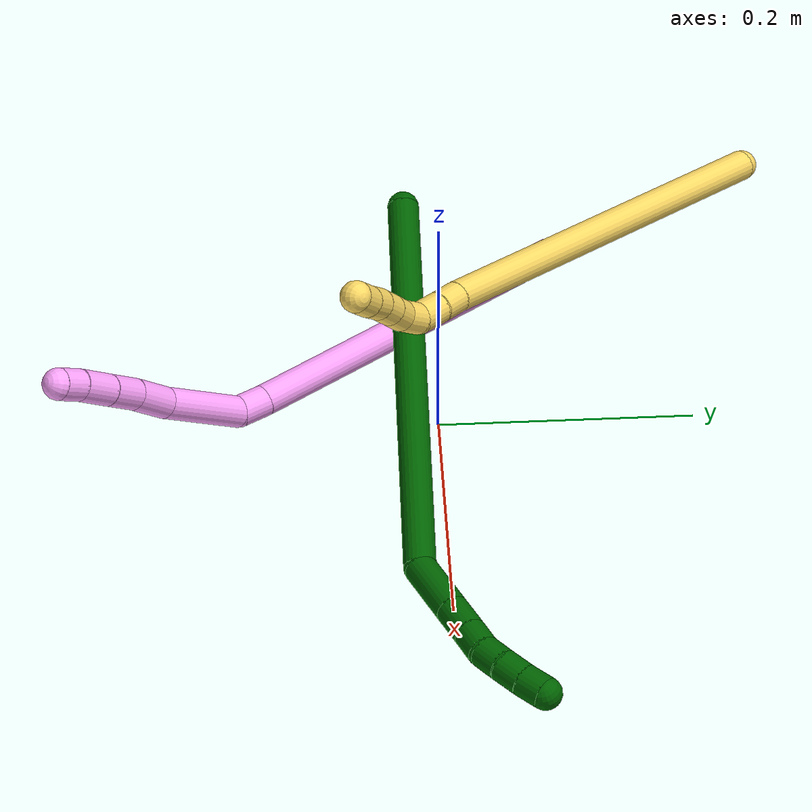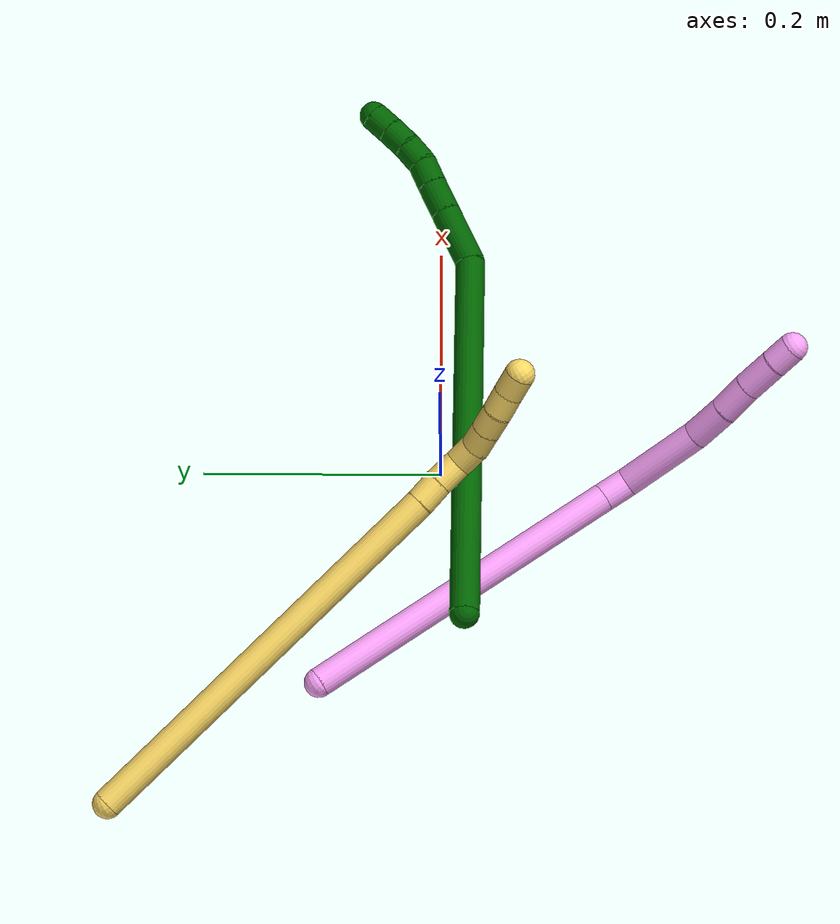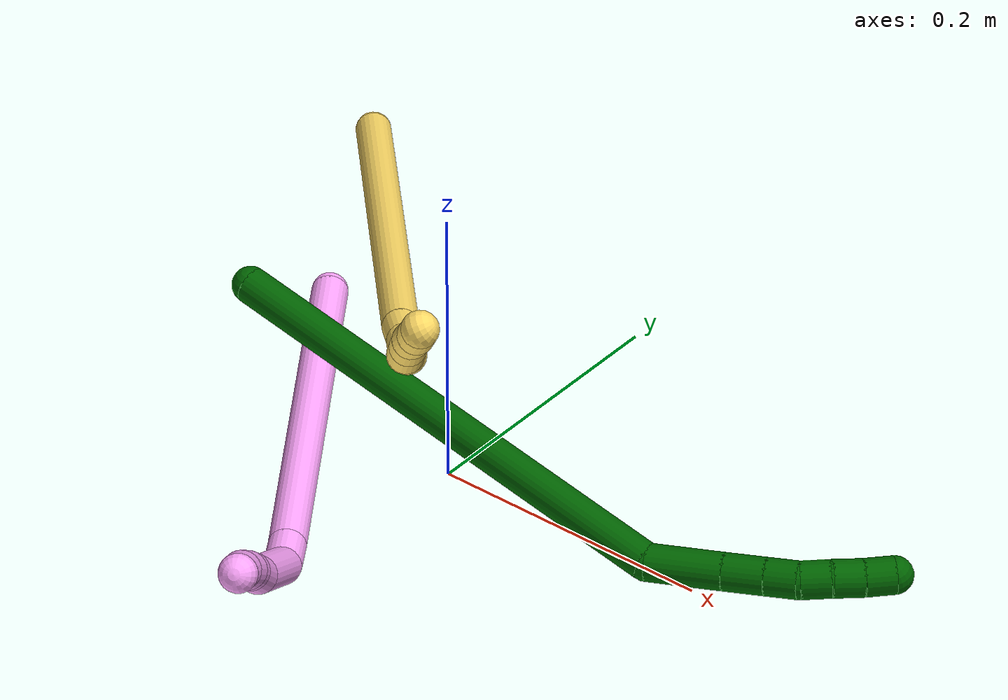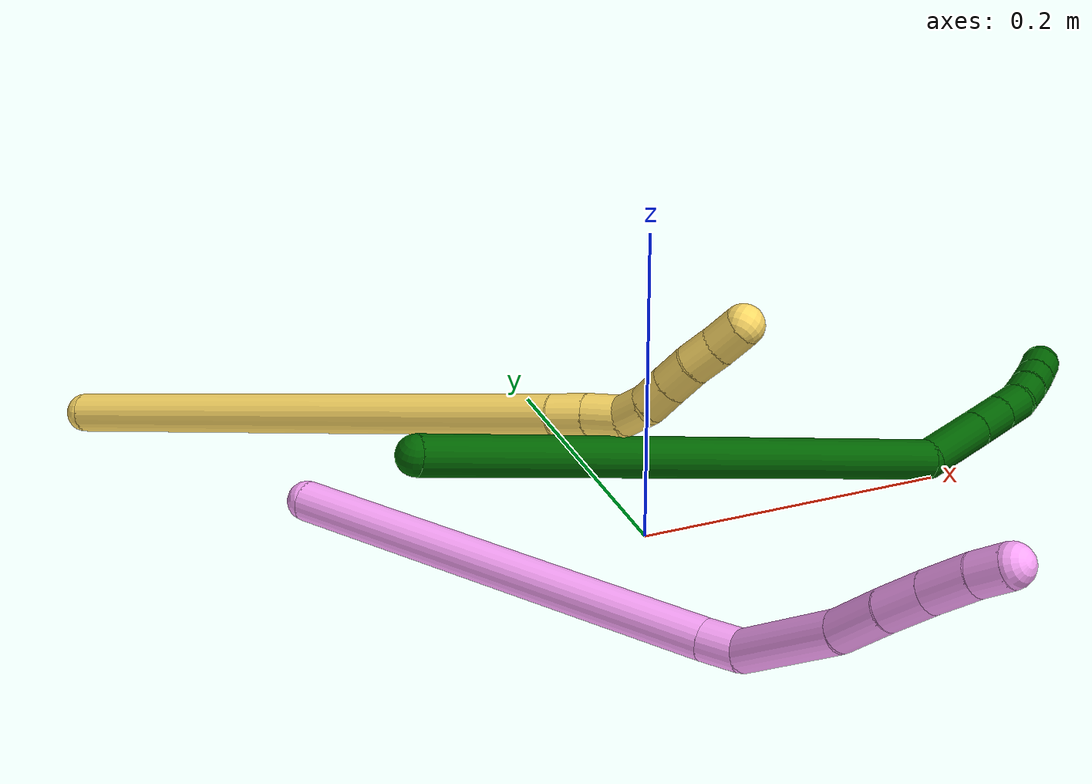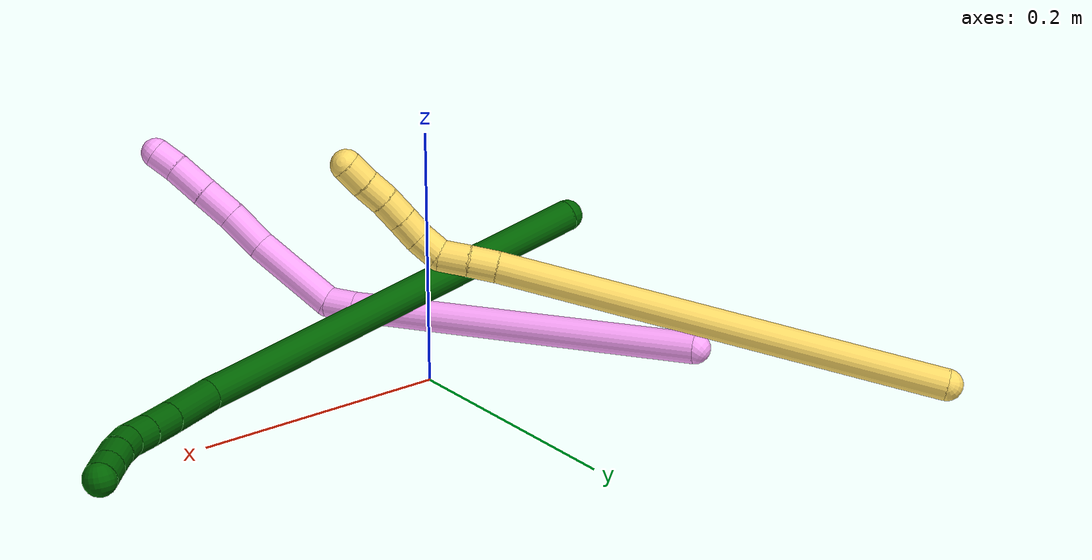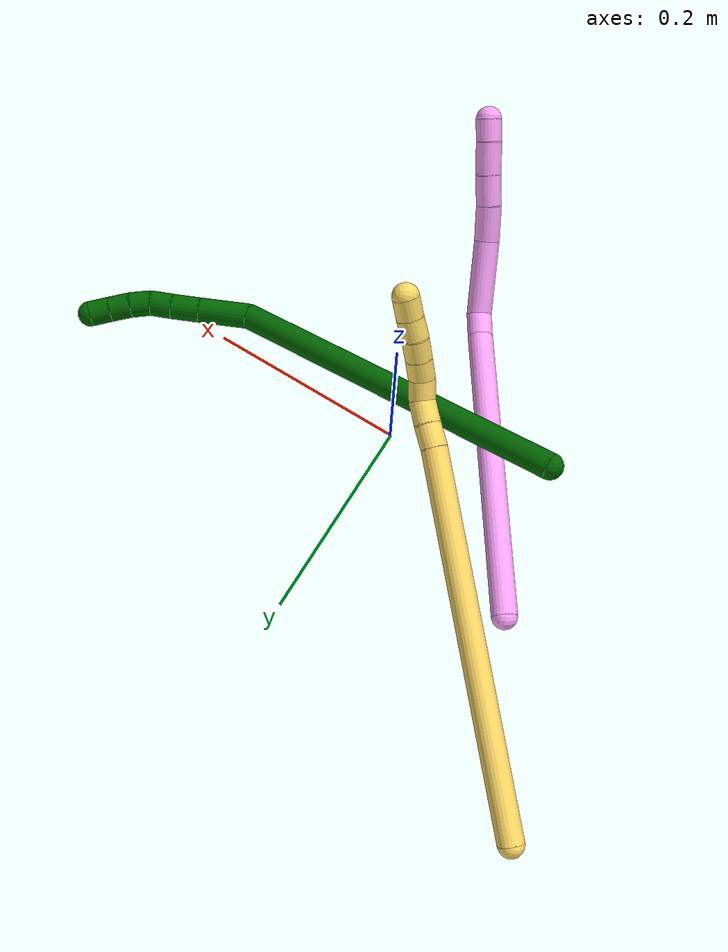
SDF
<sdf version="1.7">
 <world name="default">
  <model name="photoneo_s_sensor">
   <static>1</static>
   <pose>0 0 2 1.57079 1.57079 3.14159</pose>
   <link name="link">
    <inertial><mass>0.1</mass></inertial>
    <sensor name="sensor" type="depth">
     <update_rate>30</update_rate>
     <camera>
      <horizontal_fov>1.22</horizontal_fov>
      <image><width>1920</width><height>1200</height><format>B8G8R8</format></image>
      <clip><near>0.1</near><far>2</far></clip>
      <depth_camera><output>points</output></depth_camera>
     </camera>
     <plugin name="camera_plugin" filename="libgazebo_ros_depth_camera.so">
      <baseline>0.2</baseline>
      <alwaysOn>1</alwaysOn>
      <updateRate>0.0</updateRate>
      <cameraName>camera_ir</cameraName>
      <imageTopicName>/camera/color/image_raw</imageTopicName>
      <cameraInfoTopicName>/camera/color/camera_info</cameraInfoTopicName>
      <depthImageTopicName>/camera/depth/image_raw</depthImageTopicName>
      <depthImageCameraInfoTopicName>/camera/depth/camera_info</depthImageCameraInfoTopicName>
      <pointCloudTopicName>/camera/depth/points</pointCloudTopicName>
      <frameName>fr_optical</frameName>
      <pointCloudCutoff>0.1</pointCloudCutoff>
      <pointCloudCutoffMax>2.0</pointCloudCutoffMax>
      <distortionK1>0</distortionK1>
      <distortionK2>0</distortionK2>
      <distortionK3>0</distortionK3>
      <distortionT1>0</distortionT1>
      <distortionT2>0</distortionT2>
      <CxPrime>0</CxPrime>
      <Cx>0</Cx>
      <Cy>0</Cy>
      <focalLength>0</focalLength>
      <hackBaseline>0</hackBaseline>
     </plugin>
    </sensor>
   </link>
  </model>
  <model name="bin">
   <static>1</static>
   <link name="bottom">
    <collision name="collision-bottom">
     <pose>0 0 -0.01 0 -0 0</pose>
     <geometry><box><size>0.8 0.6 0.02</size></box></geometry>
     <surface>
      <friction><ode><mu>100</mu><mu2>100</mu2></ode></friction>
      <contact><collide_bitmask>65535</collide_bitmask></contact>
     </surface>
    </collision>
   </link>
   <link name="west_wall">
    <collision name="collision-west_wall">
     <pose>-0.41 0 0.1 0 -0 0</pose>
     <geometry><box><size>0.02 0.6 0.2</size></box></geometry>
     <surface>
      <friction><ode><mu>100</mu><mu2>100</mu2></ode></friction>
      <contact><collide_bitmask>65535</collide_bitmask></contact>
     </surface>
    </collision>
   </link>
   <link name="east_wall">
    <collision name="collision-east_wall">
     <pose>0.41 0 0.1 0 -0 0</pose>
     <geometry><box><size>0.02 0.6 0.2</size></box></geometry>
     <surface>
      <friction><ode><mu>100</mu><mu2>100</mu2></ode></friction>
      <contact><collide_bitmask>65535</collide_bitmask></contact>
     </surface>
    </collision>
   </link>
   <link name="south_wall">
    <collision name="collision-south_wall">
     <pose>0 -0.31 0.1 0 -0 0</pose>
     <geometry><box><size>0.8 0.02 0.2</size></box></geometry>
     <surface>
      <friction><ode><mu>100</mu><mu2>100</mu2></ode></friction>
      <contact><collide_bitmask>65535</collide_bitmask></contact>
     </surface>
    </collision>
   </link>
   <link name="north_wall">
    <collision name="collision-north_wall">
     <pose>0 0.31 0.1 0 -0 0</pose>
     <geometry><box><size>0.8 0.02 0.2</size></box></geometry>
     <surface>
      <friction><ode><mu>100</mu><mu2>100</mu2></ode></friction>
      <contact><collide_bitmask>65535</collide_bitmask></contact>
     </surface>
    </collision>
   </link>
  </model>
  <model name="4">
   <static>0</static>
   <link name="4">
    <collision name="collision-cylinder-e_1_1_4">
     <pose>0.04296 -0.064485 0.12005 0.492924 0.305389 0.077393</pose>
     <geometry><cylinder><radius>0.0125</radius><length>0.285769</length></cylinder></geometry>
     <surface>
      <friction><ode><mu>1.16</mu><mu2>1.16</mu2><slip1>0</slip1><slip2>0</slip2></ode></friction>
      <contact><ode><kp>1e+06</kp><kd>1</kd><max_vel>0</max_vel><min_depth>0.001</min_depth></ode></contact>
     </surface>
    </collision>
    <visual name="visual-cylinder-e_1_1_4">
     <pose>0.04296 -0.064485 0.12005 0.492924 0.305389 0.077393</pose>
     <geometry><cylinder><radius>0.0125</radius><length>0.285769</length></cylinder></geometry>
     <material><ambient>1 0.65098 0.996078 1</ambient></material>
    </visual>
    <collision name="collision-cylinder-e_2_4_5">
     <pose>0.089119 -0.134008 0.250724 0.442819 0.265632 0.06013</pose>
     <geometry><cylinder><radius>0.0125</radius><length>0.024371</length></cylinder></geometry>
     <surface>
      <friction><ode><mu>1.16</mu><mu2>1.16</mu2><slip1>0</slip1><slip2>0</slip2></ode></friction>
      <contact><ode><kp>1e+06</kp><kd>1</kd><max_vel>0</max_vel><min_depth>0.001</min_depth></ode></contact>
     </surface>
    </collision>
    <visual name="visual-cylinder-e_2_4_5">
     <pose>0.089119 -0.134008 0.250724 0.442819 0.265632 0.06013</pose>
     <geometry><cylinder><radius>0.0125</radius><length>0.024371</length></cylinder></geometry>
     <material><ambient>1 0.65098 0.996078 1</ambient></material>
    </visual>
    <collision name="collision-cylinder-e_3_5_6">
     <pose>0.091922 -0.13912 0.298214 0.002003 -0.010751 -1.1e-05</pose>
     <geometry><cylinder><radius>0.0125</radius><length>0.073736</length></cylinder></geometry>
     <surface>
      <friction><ode><mu>1.16</mu><mu2>1.16</mu2><slip1>0</slip1><slip2>0</slip2></ode></friction>
      <contact><ode><kp>1e+06</kp><kd>1</kd><max_vel>0</max_vel><min_depth>0.001</min_depth></ode></contact>
     </surface>
    </collision>
    <visual name="visual-cylinder-e_3_5_6">
     <pose>0.091922 -0.13912 0.298214 0.002003 -0.010751 -1.1e-05</pose>
     <geometry><cylinder><radius>0.0125</radius><length>0.073736</length></cylinder></geometry>
     <material><ambient>1 0.65098 0.996078 1</ambient></material>
    </visual>
    <collision name="collision-cylinder-e_4_6_7">
     <pose>0.09134 -0.136327 0.352364 -0.164378 -0.010574 0.000871</pose>
     <geometry><cylinder><radius>0.0125</radius><length>0.035042</length></cylinder></geometry>
     <surface>
      <friction><ode><mu>1.16</mu><mu2>1.16</mu2><slip1>0</slip1><slip2>0</slip2></ode></friction>
      <contact><ode><kp>1e+06</kp><kd>1</kd><max_vel>0</max_vel><min_depth>0.001</min_depth></ode></contact>
     </surface>
    </collision>
    <visual name="visual-cylinder-e_4_6_7">
     <pose>0.09134 -0.136327 0.352364 -0.164378 -0.010574 0.000871</pose>
     <geometry><cylinder><radius>0.0125</radius><length>0.035042</length></cylinder></geometry>
     <material><ambient>1 0.65098 0.996078 1</ambient></material>
    </visual>
    <collision name="collision-cylinder-e_5_7_8">
     <pose>0.092305 -0.131217 0.384113 -0.153844 0.078407 -0.006046</pose>
     <geometry><cylinder><radius>0.0125</radius><length>0.029367</length></cylinder></geometry>
     <surface>
      <friction><ode><mu>1.16</mu><mu2>1.16</mu2><slip1>0</slip1><slip2>0</slip2></ode></friction>
      <contact><ode><kp>1e+06</kp><kd>1</kd><max_vel>0</max_vel><min_depth>0.001</min_depth></ode></contact>
     </surface>
    </collision>
    <visual name="visual-cylinder-e_5_7_8">
     <pose>0.092305 -0.131217 0.384113 -0.153844 0.078407 -0.006046</pose>
     <geometry><cylinder><radius>0.0125</radius><length>0.029367</length></cylinder></geometry>
     <material><ambient>1 0.65098 0.996078 1</ambient></material>
    </visual>
    <collision name="collision-cylinder-e_6_8_9">
     <pose>0.094063 -0.127215 0.41387 -0.114514 0.039476 -0.002263</pose>
     <geometry><cylinder><radius>0.0125</radius><length>0.030808</length></cylinder></geometry>
     <surface>
      <friction><ode><mu>1.16</mu><mu2>1.16</mu2><slip1>0</slip1><slip2>0</slip2></ode></friction>
      <contact><ode><kp>1e+06</kp><kd>1</kd><max_vel>0</max_vel><min_depth>0.001</min_depth></ode></contact>
     </surface>
    </collision>
    <visual name="visual-cylinder-e_6_8_9">
     <pose>0.094063 -0.127215 0.41387 -0.114514 0.039476 -0.002263</pose>
     <geometry><cylinder><radius>0.0125</radius><length>0.030808</length></cylinder></geometry>
     <material><ambient>1 0.65098 0.996078 1</ambient></material>
    </visual>
    <collision name="collision-cylinder-e_7_9_2">
     <pose>0.095686 -0.125026 0.439556 -0.041407 0.09724 -0.002015</pose>
     <geometry><cylinder><radius>0.0125</radius><length>0.020907</length></cylinder></geometry>
     <surface>
      <friction><ode><mu>1.16</mu><mu2>1.16</mu2><slip1>0</slip1><slip2>0</slip2></ode></friction>
      <contact><ode><kp>1e+06</kp><kd>1</kd><max_vel>0</max_vel><min_depth>0.001</min_depth></ode></contact>
     </surface>
    </collision>
    <visual name="visual-cylinder-e_7_9_2">
     <pose>0.095686 -0.125026 0.439556 -0.041407 0.09724 -0.002015</pose>
     <geometry><cylinder><radius>0.0125</radius><length>0.020907</length></cylinder></geometry>
     <material><ambient>1 0.65098 0.996078 1</ambient></material>
    </visual>
    <collision name="collision-sphere-2">
     <pose>0.096701 -0.124595 0.449952 0 -0 0</pose>
     <geometry><sphere><radius>0.0125</radius></sphere></geometry>
     <surface>
      <friction><ode><mu>1.16</mu><mu2>1.16</mu2><slip1>0</slip1><slip2>0</slip2></ode></friction>
      <contact><ode><kp>1e+06</kp><kd>1</kd><max_vel>0</max_vel><min_depth>0.001</min_depth></ode></contact>
     </surface>
    </collision>
    <visual name="visual-sphere-2">
     <pose>0.096701 -0.124595 0.449952 0 -0 0</pose>
     <geometry><sphere><radius>0.0125</radius></sphere></geometry>
     <material><ambient>1 0.65098 0.996078 1</ambient></material>
    </visual>
    <collision name="collision-sphere-9">
     <pose>0.094671 -0.125456 0.429161 0 -0 0</pose>
     <geometry><sphere><radius>0.0125</radius></sphere></geometry>
     <surface>
      <friction><ode><mu>1.16</mu><mu2>1.16</mu2><slip1>0</slip1><slip2>0</slip2></ode></friction>
      <contact><ode><kp>1e+06</kp><kd>1</kd><max_vel>0</max_vel><min_depth>0.001</min_depth></ode></contact>
     </surface>
    </collision>
    <visual name="visual-sphere-9">
     <pose>0.094671 -0.125456 0.429161 0 -0 0</pose>
     <geometry><sphere><radius>0.0125</radius></sphere></geometry>
     <material><ambient>1 0.65098 0.996078 1</ambient></material>
    </visual>
    <collision name="collision-sphere-4">
     <pose>0.08592 -0.12897 0.2401 0 -0 0</pose>
     <geometry><sphere><radius>0.0125</radius></sphere></geometry>
     <surface>
      <friction><ode><mu>1.16</mu><mu2>1.16</mu2><slip1>0</slip1><slip2>0</slip2></ode></friction>
      <contact><ode><kp>1e+06</kp><kd>1</kd><max_vel>0</max_vel><min_depth>0.001</min_depth></ode></contact>
     </surface>
    </collision>
    <visual name="visual-sphere-4">
     <pose>0.08592 -0.12897 0.2401 0 -0 0</pose>
     <geometry><sphere><radius>0.0125</radius></sphere></geometry>
     <material><ambient>1 0.65098 0.996078 1</ambient></material>
    </visual>
    <collision name="collision-sphere-1">
     <geometry><sphere><radius>0.0125</radius></sphere></geometry>
     <surface>
      <friction><ode><mu>1.16</mu><mu2>1.16</mu2><slip1>0</slip1><slip2>0</slip2></ode></friction>
      <contact><ode><kp>1e+06</kp><kd>1</kd><max_vel>0</max_vel><min_depth>0.001</min_depth></ode></contact>
     </surface>
    </collision>
    <visual name="visual-sphere-1">
     <geometry><sphere><radius>0.0125</radius></sphere></geometry>
     <material><ambient>1 0.65098 0.996078 1</ambient></material>
    </visual>
    <collision name="collision-sphere-8">
     <pose>0.093455 -0.128974 0.398579 0 -0 0</pose>
     <geometry><sphere><radius>0.0125</radius></sphere></geometry>
     <surface>
      <friction><ode><mu>1.16</mu><mu2>1.16</mu2><slip1>0</slip1><slip2>0</slip2></ode></friction>
      <contact><ode><kp>1e+06</kp><kd>1</kd><max_vel>0</max_vel><min_depth>0.001</min_depth></ode></contact>
     </surface>
    </collision>
    <visual name="visual-sphere-8">
     <pose>0.093455 -0.128974 0.398579 0 -0 0</pose>
     <geometry><sphere><radius>0.0125</radius></sphere></geometry>
     <material><ambient>1 0.65098 0.996078 1</ambient></material>
    </visual>
    <collision name="collision-sphere-5">
     <pose>0.092318 -0.139046 0.261349 0 -0 0</pose>
     <geometry><sphere><radius>0.0125</radius></sphere></geometry>
     <surface>
      <friction><ode><mu>1.16</mu><mu2>1.16</mu2><slip1>0</slip1><slip2>0</slip2></ode></friction>
      <contact><ode><kp>1e+06</kp><kd>1</kd><max_vel>0</max_vel><min_depth>0.001</min_depth></ode></contact>
     </surface>
    </collision>
    <visual name="visual-sphere-5">
     <pose>0.092318 -0.139046 0.261349 0 -0 0</pose>
     <geometry><sphere><radius>0.0125</radius></sphere></geometry>
     <material><ambient>1 0.65098 0.996078 1</ambient></material>
    </visual>
    <collision name="collision-sphere-6">
     <pose>0.091525 -0.139194 0.33508 0 -0 0</pose>
     <geometry><sphere><radius>0.0125</radius></sphere></geometry>
     <surface>
      <friction><ode><mu>1.16</mu><mu2>1.16</mu2><slip1>0</slip1><slip2>0</slip2></ode></friction>
      <contact><ode><kp>1e+06</kp><kd>1</kd><max_vel>0</max_vel><min_depth>0.001</min_depth></ode></contact>
     </surface>
    </collision>
    <visual name="visual-sphere-6">
     <pose>0.091525 -0.139194 0.33508 0 -0 0</pose>
     <geometry><sphere><radius>0.0125</radius></sphere></geometry>
     <material><ambient>1 0.65098 0.996078 1</ambient></material>
    </visual>
    <collision name="collision-sphere-7">
     <pose>0.091155 -0.13346 0.369648 0 -0 0</pose>
     <geometry><sphere><radius>0.0125</radius></sphere></geometry>
     <surface>
      <friction><ode><mu>1.16</mu><mu2>1.16</mu2><slip1>0</slip1><slip2>0</slip2></ode></friction>
      <contact><ode><kp>1e+06</kp><kd>1</kd><max_vel>0</max_vel><min_depth>0.001</min_depth></ode></contact>
     </surface>
    </collision>
    <visual name="visual-sphere-7">
     <pose>0.091155 -0.13346 0.369648 0 -0 0</pose>
     <geometry><sphere><radius>0.0125</radius></sphere></geometry>
     <material><ambient>1 0.65098 0.996078 1</ambient></material>
    </visual>
    <inertial>
     <pose>0.064073 -0.094231 0.215949 0 -0 0</pose>
     <mass>0.5</mass>
     <inertia>
      <ixx>0.002063</ixx>
      <ixy>0</ixy>
      <ixz>0</ixz>
      <iyy>0.001926</iyy>
      <iyz>0</iyz>
      <izz>0.000328</izz>
     </inertia>
    </inertial>
   </link>
   <pose>-0.185065 0.099576 0.011499 0.978873 0.303842 0.282032</pose>
  </model>
  <model name="5">
   <static>0</static>
   <link name="5">
    <collision name="collision-cylinder-e_1_1_4">
     <pose>0.172933 -0.002536 -0.036516 3.07227 1.36221 3.05608</pose>
     <geometry><cylinder><radius>0.0125</radius><length>0.353529</length></cylinder></geometry>
     <surface>
      <friction><ode><mu>1.16</mu><mu2>1.16</mu2><slip1>0</slip1><slip2>0</slip2></ode></friction>
      <contact><ode><kp>1e+06</kp><kd>1</kd><max_vel>0</max_vel><min_depth>0.001</min_depth></ode></contact>
     </surface>
    </collision>
    <visual name="visual-cylinder-e_1_1_4">
     <pose>0.172933 -0.002536 -0.036516 3.07227 1.36221 3.05608</pose>
     <geometry><cylinder><radius>0.0125</radius><length>0.353529</length></cylinder></geometry>
     <material><ambient>1 0.858824 0.4 1</ambient></material>
    </visual>
    <collision name="collision-cylinder-e_2_4_5">
     <pose>0.356587 -0.005856 -0.076014 2.88428 1.29078 2.80127</pose>
     <geometry><cylinder><radius>0.0125</radius><length>0.022311</length></cylinder></geometry>
     <surface>
      <friction><ode><mu>1.16</mu><mu2>1.16</mu2><slip1>0</slip1><slip2>0</slip2></ode></friction>
      <contact><ode><kp>1e+06</kp><kd>1</kd><max_vel>0</max_vel><min_depth>0.001</min_depth></ode></contact>
     </surface>
    </collision>
    <visual name="visual-cylinder-e_2_4_5">
     <pose>0.356587 -0.005856 -0.076014 2.88428 1.29078 2.80127</pose>
     <geometry><cylinder><radius>0.0125</radius><length>0.022311</length></cylinder></geometry>
     <material><ambient>1 0.858824 0.4 1</ambient></material>
    </visual>
    <collision name="collision-cylinder-e_3_5_6">
     <pose>0.378688 -0.007554 -0.081184 2.74605 1.36536 2.65831</pose>
     <geometry><cylinder><radius>0.0125</radius><length>0.023249</length></cylinder></geometry>
     <surface>
      <friction><ode><mu>1.16</mu><mu2>1.16</mu2><slip1>0</slip1><slip2>0</slip2></ode></friction>
      <contact><ode><kp>1e+06</kp><kd>1</kd><max_vel>0</max_vel><min_depth>0.001</min_depth></ode></contact>
     </surface>
    </collision>
    <visual name="visual-cylinder-e_3_5_6">
     <pose>0.378688 -0.007554 -0.081184 2.74605 1.36536 2.65831</pose>
     <geometry><cylinder><radius>0.0125</radius><length>0.023249</length></cylinder></geometry>
     <material><ambient>1 0.858824 0.4 1</ambient></material>
    </visual>
    <collision name="collision-cylinder-e_4_6_7">
     <pose>0.399098 -0.004192 -0.086403 -2.18741 1.0449 -1.6785</pose>
     <geometry><cylinder><radius>0.0125</radius><length>0.020882</length></cylinder></geometry>
     <surface>
      <friction><ode><mu>1.16</mu><mu2>1.16</mu2><slip1>0</slip1><slip2>0</slip2></ode></friction>
      <contact><ode><kp>1e+06</kp><kd>1</kd><max_vel>0</max_vel><min_depth>0.001</min_depth></ode></contact>
     </surface>
    </collision>
    <visual name="visual-cylinder-e_4_6_7">
     <pose>0.399098 -0.004192 -0.086403 -2.18741 1.0449 -1.6785</pose>
     <geometry><cylinder><radius>0.0125</radius><length>0.020882</length></cylinder></geometry>
     <material><ambient>1 0.858824 0.4 1</ambient></material>
    </visual>
    <collision name="collision-cylinder-e_5_7_8">
     <pose>0.415265 0.005005 -0.094422 -2.36305 0.794662 -1.59357</pose>
     <geometry><cylinder><radius>0.0125</radius><length>0.020004</length></cylinder></geometry>
     <surface>
      <friction><ode><mu>1.16</mu><mu2>1.16</mu2><slip1>0</slip1><slip2>0</slip2></ode></friction>
      <contact><ode><kp>1e+06</kp><kd>1</kd><max_vel>0</max_vel><min_depth>0.001</min_depth></ode></contact>
     </surface>
    </collision>
    <visual name="visual-cylinder-e_5_7_8">
     <pose>0.415265 0.005005 -0.094422 -2.36305 0.794662 -1.59357</pose>
     <geometry><cylinder><radius>0.0125</radius><length>0.020004</length></cylinder></geometry>
     <material><ambient>1 0.858824 0.4 1</ambient></material>
    </visual>
    <collision name="collision-cylinder-e_6_8_9">
     <pose>0.429645 0.014748 -0.104352 -2.36829 0.809192 -1.62125</pose>
     <geometry><cylinder><radius>0.0125</radius><length>0.020011</length></cylinder></geometry>
     <surface>
      <friction><ode><mu>1.16</mu><mu2>1.16</mu2><slip1>0</slip1><slip2>0</slip2></ode></friction>
      <contact><ode><kp>1e+06</kp><kd>1</kd><max_vel>0</max_vel><min_depth>0.001</min_depth></ode></contact>
     </surface>
    </collision>
    <visual name="visual-cylinder-e_6_8_9">
     <pose>0.429645 0.014748 -0.104352 -2.36829 0.809192 -1.62125</pose>
     <geometry><cylinder><radius>0.0125</radius><length>0.020011</length></cylinder></geometry>
     <material><ambient>1 0.858824 0.4 1</ambient></material>
    </visual>
    <collision name="collision-cylinder-e_7_9_10">
     <pose>0.44448 0.023353 -0.114596 -2.52203 0.861841 -1.9252</pose>
     <geometry><cylinder><radius>0.0125</radius><length>0.020011</length></cylinder></geometry>
     <surface>
      <friction><ode><mu>1.16</mu><mu2>1.16</mu2><slip1>0</slip1><slip2>0</slip2></ode></friction>
      <contact><ode><kp>1e+06</kp><kd>1</kd><max_vel>0</max_vel><min_depth>0.001</min_depth></ode></contact>
     </surface>
    </collision>
    <visual name="visual-cylinder-e_7_9_10">
     <pose>0.44448 0.023353 -0.114596 -2.52203 0.861841 -1.9252</pose>
     <geometry><cylinder><radius>0.0125</radius><length>0.020011</length></cylinder></geometry>
     <material><ambient>1 0.858824 0.4 1</ambient></material>
    </visual>
    <collision name="collision-cylinder-e_8_10_2">
     <pose>0.459436 0.031544 -0.125039 -2.43264 0.827081 -1.74033</pose>
     <geometry><cylinder><radius>0.0125</radius><length>0.020004</length></cylinder></geometry>
     <surface>
      <friction><ode><mu>1.16</mu><mu2>1.16</mu2><slip1>0</slip1><slip2>0</slip2></ode></friction>
      <contact><ode><kp>1e+06</kp><kd>1</kd><max_vel>0</max_vel><min_depth>0.001</min_depth></ode></contact>
     </surface>
    </collision>
    <visual name="visual-cylinder-e_8_10_2">
     <pose>0.459436 0.031544 -0.125039 -2.43264 0.827081 -1.74033</pose>
     <geometry><cylinder><radius>0.0125</radius><length>0.020004</length></cylinder></geometry>
     <material><ambient>1 0.858824 0.4 1</ambient></material>
    </visual>
    <collision name="collision-sphere-2">
     <pose>0.466797 0.035953 -0.130179 0 -0 0</pose>
     <geometry><sphere><radius>0.0125</radius></sphere></geometry>
     <surface>
      <friction><ode><mu>1.16</mu><mu2>1.16</mu2><slip1>0</slip1><slip2>0</slip2></ode></friction>
      <contact><ode><kp>1e+06</kp><kd>1</kd><max_vel>0</max_vel><min_depth>0.001</min_depth></ode></contact>
     </surface>
    </collision>
    <visual name="visual-sphere-2">
     <pose>0.466797 0.035953 -0.130179 0 -0 0</pose>
     <geometry><sphere><radius>0.0125</radius></sphere></geometry>
     <material><ambient>1 0.858824 0.4 1</ambient></material>
    </visual>
    <collision name="collision-sphere-10">
     <pose>0.452075 0.027136 -0.119899 0 -0 0</pose>
     <geometry><sphere><radius>0.0125</radius></sphere></geometry>
     <surface>
      <friction><ode><mu>1.16</mu><mu2>1.16</mu2><slip1>0</slip1><slip2>0</slip2></ode></friction>
      <contact><ode><kp>1e+06</kp><kd>1</kd><max_vel>0</max_vel><min_depth>0.001</min_depth></ode></contact>
     </surface>
    </collision>
    <visual name="visual-sphere-10">
     <pose>0.452075 0.027136 -0.119899 0 -0 0</pose>
     <geometry><sphere><radius>0.0125</radius></sphere></geometry>
     <material><ambient>1 0.858824 0.4 1</ambient></material>
    </visual>
    <collision name="collision-sphere-9">
     <pose>0.436886 0.019571 -0.109293 0 -0 0</pose>
     <geometry><sphere><radius>0.0125</radius></sphere></geometry>
     <surface>
      <friction><ode><mu>1.16</mu><mu2>1.16</mu2><slip1>0</slip1><slip2>0</slip2></ode></friction>
      <contact><ode><kp>1e+06</kp><kd>1</kd><max_vel>0</max_vel><min_depth>0.001</min_depth></ode></contact>
     </surface>
    </collision>
    <visual name="visual-sphere-9">
     <pose>0.436886 0.019571 -0.109293 0 -0 0</pose>
     <geometry><sphere><radius>0.0125</radius></sphere></geometry>
     <material><ambient>1 0.858824 0.4 1</ambient></material>
    </visual>
    <collision name="collision-sphere-4">
     <pose>0.345866 -0.005071 -0.073033 0 -0 0</pose>
     <geometry><sphere><radius>0.0125</radius></sphere></geometry>
     <surface>
      <friction><ode><mu>1.16</mu><mu2>1.16</mu2><slip1>0</slip1><slip2>0</slip2></ode></friction>
      <contact><ode><kp>1e+06</kp><kd>1</kd><max_vel>0</max_vel><min_depth>0.001</min_depth></ode></contact>
     </surface>
    </collision>
    <visual name="visual-sphere-4">
     <pose>0.345866 -0.005071 -0.073033 0 -0 0</pose>
     <geometry><sphere><radius>0.0125</radius></sphere></geometry>
     <material><ambient>1 0.858824 0.4 1</ambient></material>
    </visual>
    <collision name="collision-sphere-1">
     <geometry><sphere><radius>0.0125</radius></sphere></geometry>
     <surface>
      <friction><ode><mu>1.16</mu><mu2>1.16</mu2><slip1>0</slip1><slip2>0</slip2></ode></friction>
      <contact><ode><kp>1e+06</kp><kd>1</kd><max_vel>0</max_vel><min_depth>0.001</min_depth></ode></contact>
     </surface>
    </collision>
    <visual name="visual-sphere-1">
     <geometry><sphere><radius>0.0125</radius></sphere></geometry>
     <material><ambient>1 0.858824 0.4 1</ambient></material>
    </visual>
    <collision name="collision-sphere-8">
     <pose>0.422403 0.009925 -0.099411 0 -0 0</pose>
     <geometry><sphere><radius>0.0125</radius></sphere></geometry>
     <surface>
      <friction><ode><mu>1.16</mu><mu2>1.16</mu2><slip1>0</slip1><slip2>0</slip2></ode></friction>
      <contact><ode><kp>1e+06</kp><kd>1</kd><max_vel>0</max_vel><min_depth>0.001</min_depth></ode></contact>
     </surface>
    </collision>
    <visual name="visual-sphere-8">
     <pose>0.422403 0.009925 -0.099411 0 -0 0</pose>
     <geometry><sphere><radius>0.0125</radius></sphere></geometry>
     <material><ambient>1 0.858824 0.4 1</ambient></material>
    </visual>
    <collision name="collision-sphere-5">
     <pose>0.367308 -0.00664 -0.078996 0 -0 0</pose>
     <geometry><sphere><radius>0.0125</radius></sphere></geometry>
     <surface>
      <friction><ode><mu>1.16</mu><mu2>1.16</mu2><slip1>0</slip1><slip2>0</slip2></ode></friction>
      <contact><ode><kp>1e+06</kp><kd>1</kd><max_vel>0</max_vel><min_depth>0.001</min_depth></ode></contact>
     </surface>
    </collision>
    <visual name="visual-sphere-5">
     <pose>0.367308 -0.00664 -0.078996 0 -0 0</pose>
     <geometry><sphere><radius>0.0125</radius></sphere></geometry>
     <material><ambient>1 0.858824 0.4 1</ambient></material>
    </visual>
    <collision name="collision-sphere-6">
     <pose>0.390068 -0.008468 -0.083372 0 -0 0</pose>
     <geometry><sphere><radius>0.0125</radius></sphere></geometry>
     <surface>
      <friction><ode><mu>1.16</mu><mu2>1.16</mu2><slip1>0</slip1><slip2>0</slip2></ode></friction>
      <contact><ode><kp>1e+06</kp><kd>1</kd><max_vel>0</max_vel><min_depth>0.001</min_depth></ode></contact>
     </surface>
    </collision>
    <visual name="visual-sphere-6">
     <pose>0.390068 -0.008468 -0.083372 0 -0 0</pose>
     <geometry><sphere><radius>0.0125</radius></sphere></geometry>
     <material><ambient>1 0.858824 0.4 1</ambient></material>
    </visual>
    <collision name="collision-sphere-7">
     <pose>0.408128 8.4e-05 -0.089434 0 -0 0</pose>
     <geometry><sphere><radius>0.0125</radius></sphere></geometry>
     <surface>
      <friction><ode><mu>1.16</mu><mu2>1.16</mu2><slip1>0</slip1><slip2>0</slip2></ode></friction>
      <contact><ode><kp>1e+06</kp><kd>1</kd><max_vel>0</max_vel><min_depth>0.001</min_depth></ode></contact>
     </surface>
    </collision>
    <visual name="visual-sphere-7">
     <pose>0.408128 8.4e-05 -0.089434 0 -0 0</pose>
     <geometry><sphere><radius>0.0125</radius></sphere></geometry>
     <material><ambient>1 0.858824 0.4 1</ambient></material>
    </visual>
    <inertial>
     <pose>0.24244 0.000407 -0.054137 0 -0 0</pose>
     <mass>0.5</mass>
     <inertia>
      <ixx>-0.000666</ixx>
      <ixy>0</ixy>
      <ixz>0</ixz>
      <iyy>0.003767</iyy>
      <iyz>0</iyz>
      <izz>-0.003585</izz>
     </inertia>
    </inertial>
   </link>
   <pose>-0.288599 0.270533 0.01166 2.10744 -0.120061 -1.01445</pose>
  </model>
  <model name="6">
   <static>0</static>
   <link name="6">
    <collision name="collision-cylinder-e_1_1_4">
     <pose>0.15198 -0.069832 0.029858 1.16675 1.10737 0.774774</pose>
     <geometry><cylinder><radius>0.0125</radius><length>0.339799</length></cylinder></geometry>
     <surface>
      <friction><ode><mu>1.16</mu><mu2>1.16</mu2><slip1>0</slip1><slip2>0</slip2></ode></friction>
      <contact><ode><kp>1e+06</kp><kd>1</kd><max_vel>0</max_vel><min_depth>0.001</min_depth></ode></contact>
     </surface>
    </collision>
    <visual name="visual-cylinder-e_1_1_4">
     <pose>0.15198 -0.069832 0.029858 1.16675 1.10737 0.774774</pose>
     <geometry><cylinder><radius>0.0125</radius><length>0.339799</length></cylinder></geometry>
     <material><ambient>0 0.392157 0.003922 1</ambient></material>
    </visual>
    <collision name="collision-cylinder-e_2_4_5">
     <pose>0.319072 -0.159662 0.061306 1.49148 0.645617 0.599343</pose>
     <geometry><cylinder><radius>0.0125</radius><length>0.050233</length></cylinder></geometry>
     <surface>
      <friction><ode><mu>1.16</mu><mu2>1.16</mu2><slip1>0</slip1><slip2>0</slip2></ode></friction>
      <contact><ode><kp>1e+06</kp><kd>1</kd><max_vel>0</max_vel><min_depth>0.001</min_depth></ode></contact>
     </surface>
    </collision>
    <visual name="visual-cylinder-e_2_4_5">
     <pose>0.319072 -0.159662 0.061306 1.49148 0.645617 0.599343</pose>
     <geometry><cylinder><radius>0.0125</radius><length>0.050233</length></cylinder></geometry>
     <material><ambient>0 0.392157 0.003922 1</ambient></material>
    </visual>
    <collision name="collision-cylinder-e_3_5_6">
     <pose>0.342505 -0.190653 0.063612 1.50577 0.646907 0.608697</pose>
     <geometry><cylinder><radius>0.0125</radius><length>0.027611</length></cylinder></geometry>
     <surface>
      <friction><ode><mu>1.16</mu><mu2>1.16</mu2><slip1>0</slip1><slip2>0</slip2></ode></friction>
      <contact><ode><kp>1e+06</kp><kd>1</kd><max_vel>0</max_vel><min_depth>0.001</min_depth></ode></contact>
     </surface>
    </collision>
    <visual name="visual-cylinder-e_3_5_6">
     <pose>0.342505 -0.190653 0.063612 1.50577 0.646907 0.608697</pose>
     <geometry><cylinder><radius>0.0125</radius><length>0.027611</length></cylinder></geometry>
     <material><ambient>0 0.392157 0.003922 1</ambient></material>
    </visual>
    <collision name="collision-cylinder-e_4_6_7">
     <pose>0.357432 -0.210153 0.064668 1.53082 0.659935 0.635807</pose>
     <geometry><cylinder><radius>0.0125</radius><length>0.021552</length></cylinder></geometry>
     <surface>
      <friction><ode><mu>1.16</mu><mu2>1.16</mu2><slip1>0</slip1><slip2>0</slip2></ode></friction>
      <contact><ode><kp>1e+06</kp><kd>1</kd><max_vel>0</max_vel><min_depth>0.001</min_depth></ode></contact>
     </surface>
    </collision>
    <visual name="visual-cylinder-e_4_6_7">
     <pose>0.357432 -0.210153 0.064668 1.53082 0.659935 0.635807</pose>
     <geometry><cylinder><radius>0.0125</radius><length>0.021552</length></cylinder></geometry>
     <material><ambient>0 0.392157 0.003922 1</ambient></material>
    </visual>
    <collision name="collision-cylinder-e_5_7_8">
     <pose>0.367855 -0.22793 0.066036 1.46038 0.388349 0.348539</pose>
     <geometry><cylinder><radius>0.0125</radius><length>0.020157</length></cylinder></geometry>
     <surface>
      <friction><ode><mu>1.16</mu><mu2>1.16</mu2><slip1>0</slip1><slip2>0</slip2></ode></friction>
      <contact><ode><kp>1e+06</kp><kd>1</kd><max_vel>0</max_vel><min_depth>0.001</min_depth></ode></contact>
     </surface>
    </collision>
    <visual name="visual-cylinder-e_5_7_8">
     <pose>0.367855 -0.22793 0.066036 1.46038 0.388349 0.348539</pose>
     <geometry><cylinder><radius>0.0125</radius><length>0.020157</length></cylinder></geometry>
     <material><ambient>0 0.392157 0.003922 1</ambient></material>
    </visual>
    <collision name="collision-cylinder-e_6_8_9">
     <pose>0.374953 -0.246763 0.069106 1.36042 0.323816 0.26276</pose>
     <geometry><cylinder><radius>0.0125</radius><length>0.020626</length></cylinder></geometry>
     <surface>
      <friction><ode><mu>1.16</mu><mu2>1.16</mu2><slip1>0</slip1><slip2>0</slip2></ode></friction>
      <contact><ode><kp>1e+06</kp><kd>1</kd><max_vel>0</max_vel><min_depth>0.001</min_depth></ode></contact>
     </surface>
    </collision>
    <visual name="visual-cylinder-e_6_8_9">
     <pose>0.374953 -0.246763 0.069106 1.36042 0.323816 0.26276</pose>
     <geometry><cylinder><radius>0.0125</radius><length>0.020626</length></cylinder></geometry>
     <material><ambient>0 0.392157 0.003922 1</ambient></material>
    </visual>
    <collision name="collision-cylinder-e_7_9_2">
     <pose>0.380953 -0.265818 0.072791 1.39934 0.275014 0.231911</pose>
     <geometry><cylinder><radius>0.0125</radius><length>0.020022</length></cylinder></geometry>
     <surface>
      <friction><ode><mu>1.16</mu><mu2>1.16</mu2><slip1>0</slip1><slip2>0</slip2></ode></friction>
      <contact><ode><kp>1e+06</kp><kd>1</kd><max_vel>0</max_vel><min_depth>0.001</min_depth></ode></contact>
     </surface>
    </collision>
    <visual name="visual-cylinder-e_7_9_2">
     <pose>0.380953 -0.265818 0.072791 1.39934 0.275014 0.231911</pose>
     <geometry><cylinder><radius>0.0125</radius><length>0.020022</length></cylinder></geometry>
     <material><ambient>0 0.392157 0.003922 1</ambient></material>
    </visual>
    <collision name="collision-sphere-2">
     <pose>0.383671 -0.275312 0.074435 0 -0 0</pose>
     <geometry><sphere><radius>0.0125</radius></sphere></geometry>
     <surface>
      <friction><ode><mu>1.16</mu><mu2>1.16</mu2><slip1>0</slip1><slip2>0</slip2></ode></friction>
      <contact><ode><kp>1e+06</kp><kd>1</kd><max_vel>0</max_vel><min_depth>0.001</min_depth></ode></contact>
     </surface>
    </collision>
    <visual name="visual-sphere-2">
     <pose>0.383671 -0.275312 0.074435 0 -0 0</pose>
     <geometry><sphere><radius>0.0125</radius></sphere></geometry>
     <material><ambient>0 0.392157 0.003922 1</ambient></material>
    </visual>
    <collision name="collision-sphere-9">
     <pose>0.378234 -0.256324 0.071147 0 -0 0</pose>
     <geometry><sphere><radius>0.0125</radius></sphere></geometry>
     <surface>
      <friction><ode><mu>1.16</mu><mu2>1.16</mu2><slip1>0</slip1><slip2>0</slip2></ode></friction>
      <contact><ode><kp>1e+06</kp><kd>1</kd><max_vel>0</max_vel><min_depth>0.001</min_depth></ode></contact>
     </surface>
    </collision>
    <visual name="visual-sphere-9">
     <pose>0.378234 -0.256324 0.071147 0 -0 0</pose>
     <geometry><sphere><radius>0.0125</radius></sphere></geometry>
     <material><ambient>0 0.392157 0.003922 1</ambient></material>
    </visual>
    <collision name="collision-sphere-4">
     <pose>0.303959 -0.139664 0.059717 0 -0 0</pose>
     <geometry><sphere><radius>0.0125</radius></sphere></geometry>
     <surface>
      <friction><ode><mu>1.16</mu><mu2>1.16</mu2><slip1>0</slip1><slip2>0</slip2></ode></friction>
      <contact><ode><kp>1e+06</kp><kd>1</kd><max_vel>0</max_vel><min_depth>0.001</min_depth></ode></contact>
     </surface>
    </collision>
    <visual name="visual-sphere-4">
     <pose>0.303959 -0.139664 0.059717 0 -0 0</pose>
     <geometry><sphere><radius>0.0125</radius></sphere></geometry>
     <material><ambient>0 0.392157 0.003922 1</ambient></material>
    </visual>
    <collision name="collision-sphere-1">
     <geometry><sphere><radius>0.0125</radius></sphere></geometry>
     <surface>
      <friction><ode><mu>1.16</mu><mu2>1.16</mu2><slip1>0</slip1><slip2>0</slip2></ode></friction>
      <contact><ode><kp>1e+06</kp><kd>1</kd><max_vel>0</max_vel><min_depth>0.001</min_depth></ode></contact>
     </surface>
    </collision>
    <visual name="visual-sphere-1">
     <geometry><sphere><radius>0.0125</radius></sphere></geometry>
     <material><ambient>0 0.392157 0.003922 1</ambient></material>
    </visual>
    <collision name="collision-sphere-8">
     <pose>0.371671 -0.237202 0.067064 0 -0 0</pose>
     <geometry><sphere><radius>0.0125</radius></sphere></geometry>
     <surface>
      <friction><ode><mu>1.16</mu><mu2>1.16</mu2><slip1>0</slip1><slip2>0</slip2></ode></friction>
      <contact><ode><kp>1e+06</kp><kd>1</kd><max_vel>0</max_vel><min_depth>0.001</min_depth></ode></contact>
     </surface>
    </collision>
    <visual name="visual-sphere-8">
     <pose>0.371671 -0.237202 0.067064 0 -0 0</pose>
     <geometry><sphere><radius>0.0125</radius></sphere></geometry>
     <material><ambient>0 0.392157 0.003922 1</ambient></material>
    </visual>
    <collision name="collision-sphere-5">
     <pose>0.334184 -0.179661 0.062896 0 -0 0</pose>
     <geometry><sphere><radius>0.0125</radius></sphere></geometry>
     <surface>
      <friction><ode><mu>1.16</mu><mu2>1.16</mu2><slip1>0</slip1><slip2>0</slip2></ode></friction>
      <contact><ode><kp>1e+06</kp><kd>1</kd><max_vel>0</max_vel><min_depth>0.001</min_depth></ode></contact>
     </surface>
    </collision>
    <visual name="visual-sphere-5">
     <pose>0.334184 -0.179661 0.062896 0 -0 0</pose>
     <geometry><sphere><radius>0.0125</radius></sphere></geometry>
     <material><ambient>0 0.392157 0.003922 1</ambient></material>
    </visual>
    <collision name="collision-sphere-6">
     <pose>0.350826 -0.201646 0.064328 0 -0 0</pose>
     <geometry><sphere><radius>0.0125</radius></sphere></geometry>
     <surface>
      <friction><ode><mu>1.16</mu><mu2>1.16</mu2><slip1>0</slip1><slip2>0</slip2></ode></friction>
      <contact><ode><kp>1e+06</kp><kd>1</kd><max_vel>0</max_vel><min_depth>0.001</min_depth></ode></contact>
     </surface>
    </collision>
    <visual name="visual-sphere-6">
     <pose>0.350826 -0.201646 0.064328 0 -0 0</pose>
     <geometry><sphere><radius>0.0125</radius></sphere></geometry>
     <material><ambient>0 0.392157 0.003922 1</ambient></material>
    </visual>
    <collision name="collision-sphere-7">
     <pose>0.364038 -0.218659 0.065008 0 -0 0</pose>
     <geometry><sphere><radius>0.0125</radius></sphere></geometry>
     <surface>
      <friction><ode><mu>1.16</mu><mu2>1.16</mu2><slip1>0</slip1><slip2>0</slip2></ode></friction>
      <contact><ode><kp>1e+06</kp><kd>1</kd><max_vel>0</max_vel><min_depth>0.001</min_depth></ode></contact>
     </surface>
    </collision>
    <visual name="visual-sphere-7">
     <pose>0.364038 -0.218659 0.065008 0 -0 0</pose>
     <geometry><sphere><radius>0.0125</radius></sphere></geometry>
     <material><ambient>0 0.392157 0.003922 1</ambient></material>
    </visual>
    <inertial>
     <pose>0.215214 -0.113098 0.041179 0 -0 0</pose>
     <mass>0.5</mass>
     <inertia>
      <ixx>0.002129</ixx>
      <ixy>0</ixy>
      <ixz>0</ixz>
      <iyy>0.003833</iyy>
      <iyz>0</iyz>
      <izz>-0.001575</izz>
     </inertia>
    </inertial>
   </link>
   <pose>-0.151146 -0.019974 0.096059 -2.92491 0.129354 -0.476839</pose>
  </model>
 </world>
</sdf>
